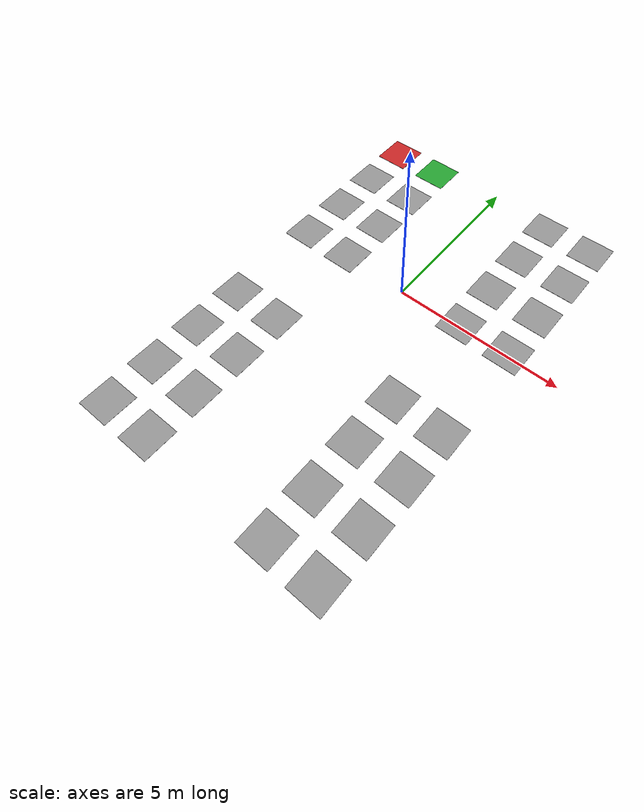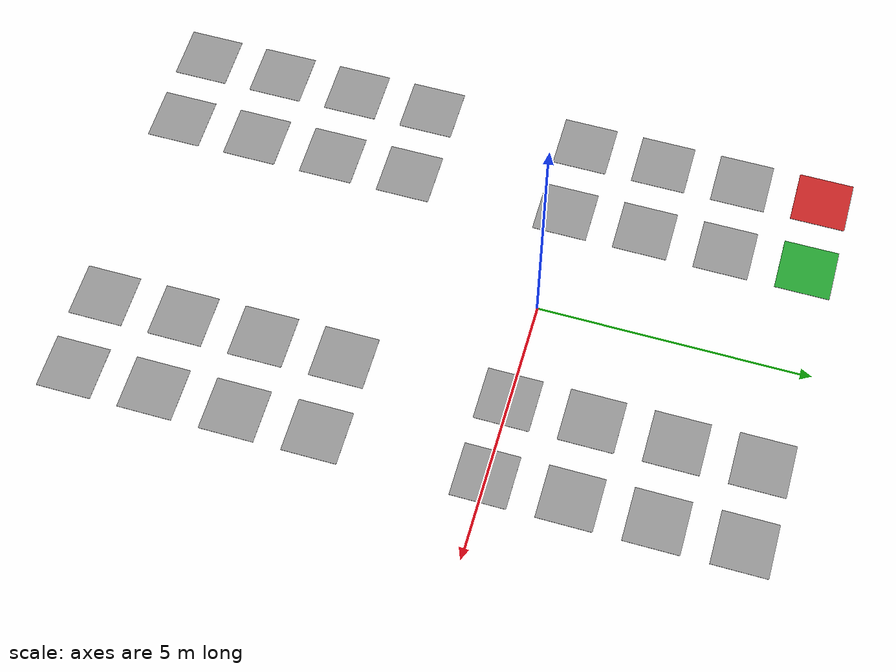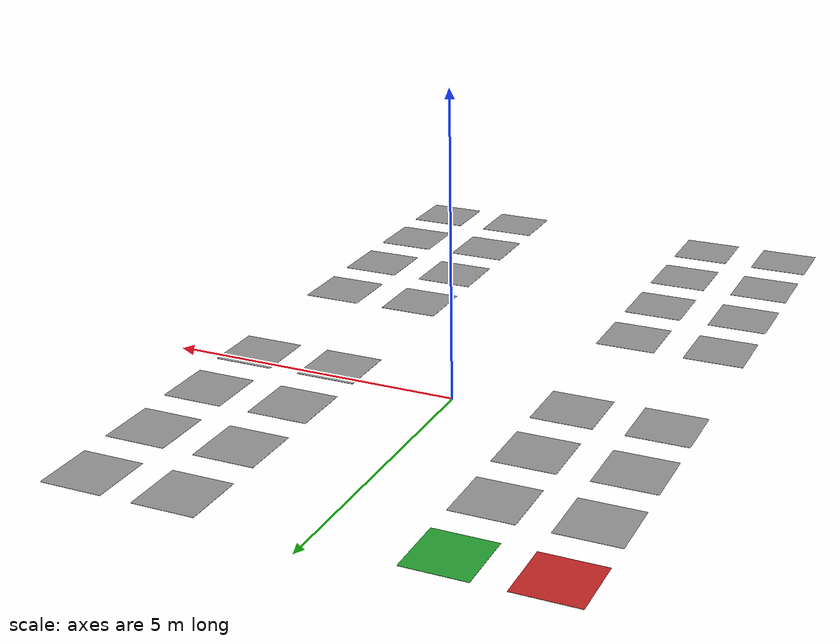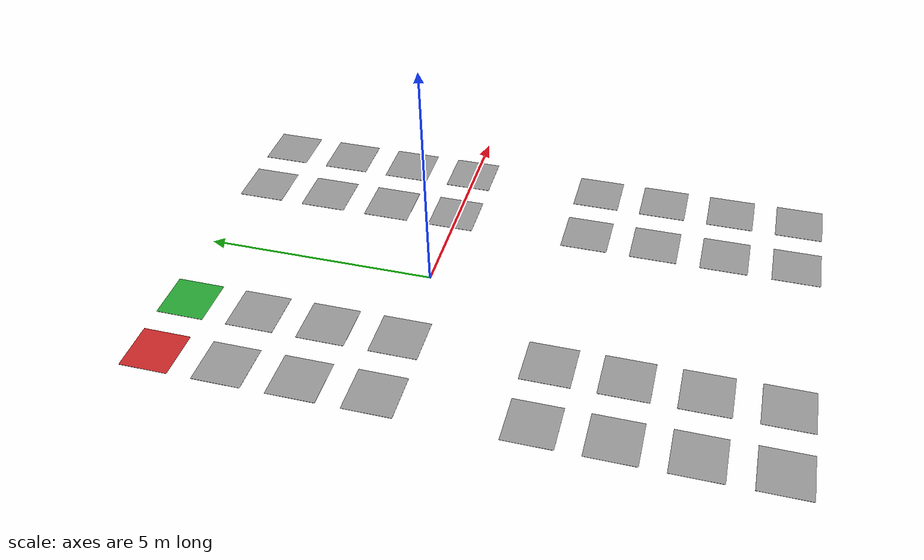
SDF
<sdf version="1.6">
 <world name="default">
  <gravity>0 0 -9.8</gravity>
  <physics default="0" name="default_physics" type="ode">
   <max_step_size>0.001</max_step_size>
   <real_time_factor>1</real_time_factor>
   <real_time_update_rate>1000</real_time_update_rate>
  </physics>
  <model name="grid1_1">
   <pose>3.5 -7.5 0.2 0 0 0</pose>
   <link name="link">
    <collision name="collision"><geometry><box><size>1.5 1.5 0.005</size></box></geometry></collision>
    <visual name="visual">
     <geometry><box><size>1 1 0.005</size></box></geometry>
     <material>
      <script><name>Gazebo/Grey</name><uri>file://media/materials/scripts/gazebo.material</uri></script>
     </material>
    </visual>
   </link>
   <static>1</static>
  </model>
  <model name="grid1_2">
   <pose>2 -7.5 0.2 0 0 0</pose>
   <link name="link">
    <collision name="collision"><geometry><box><size>1.5 1.5 0.005</size></box></geometry></collision>
    <visual name="visual">
     <geometry><box><size>1 1 0.005</size></box></geometry>
     <material>
      <script><name>Gazebo/Grey</name><uri>file://media/materials/scripts/gazebo.material</uri></script>
     </material>
    </visual>
   </link>
   <static>1</static>
  </model>
  <model name="grid1_3">
   <pose>3.5 -6 0.2 0 0 0</pose>
   <link name="link">
    <collision name="collision"><geometry><box><size>1.5 1.5 0.005</size></box></geometry></collision>
    <visual name="visual">
     <geometry><box><size>1 1 0.005</size></box></geometry>
     <material>
      <script><name>Gazebo/Grey</name><uri>file://media/materials/scripts/gazebo.material</uri></script>
     </material>
    </visual>
   </link>
   <static>1</static>
  </model>
  <model name="grid1_4">
   <pose>2 -6 0.2 0 0 0</pose>
   <link name="link">
    <collision name="collision"><geometry><box><size>1.5 1.5 0.005</size></box></geometry></collision>
    <visual name="visual">
     <geometry><box><size>1 1 0.005</size></box></geometry>
     <material>
      <script><name>Gazebo/Grey</name><uri>file://media/materials/scripts/gazebo.material</uri></script>
     </material>
    </visual>
   </link>
   <static>1</static>
  </model>
  <model name="grid1_5">
   <pose>3.5 -4.5 0.2 0 0 0</pose>
   <link name="link">
    <collision name="collision"><geometry><box><size>1.5 1.5 0.005</size></box></geometry></collision>
    <visual name="visual">
     <geometry><box><size>1 1 0.005</size></box></geometry>
     <material>
      <script><name>Gazebo/Grey</name><uri>file://media/materials/scripts/gazebo.material</uri></script>
     </material>
    </visual>
   </link>
   <static>1</static>
  </model>
  <model name="grid1_6">
   <pose>2 -4.5 0.2 0 0 0</pose>
   <link name="link">
    <collision name="collision"><geometry><box><size>1.5 1.5 0.005</size></box></geometry></collision>
    <visual name="visual">
     <geometry><box><size>1 1 0.005</size></box></geometry>
     <material>
      <script><name>Gazebo/Grey</name><uri>file://media/materials/scripts/gazebo.material</uri></script>
     </material>
    </visual>
   </link>
   <static>1</static>
  </model>
  <model name="grid1_7">
   <pose>3.5 -3 0.2 0 0 0</pose>
   <link name="link">
    <collision name="collision"><geometry><box><size>1.5 1.5 0.005</size></box></geometry></collision>
    <visual name="visual">
     <geometry><box><size>1 1 0.005</size></box></geometry>
     <material>
      <script><name>Gazebo/Grey</name><uri>file://media/materials/scripts/gazebo.material</uri></script>
     </material>
    </visual>
   </link>
   <static>1</static>
  </model>
  <model name="grid1_8">
   <pose>2 -3 0.2 0 0 0</pose>
   <link name="link">
    <collision name="collision"><geometry><box><size>1.5 1.5 0.005</size></box></geometry></collision>
    <visual name="visual">
     <geometry><box><size>1 1 0.005</size></box></geometry>
     <material>
      <script><name>Gazebo/Grey</name><uri>file://media/materials/scripts/gazebo.material</uri></script>
     </material>
    </visual>
   </link>
   <static>1</static>
  </model>
  <model name="grid2_1">
   <pose>-2 -7.5 0.2 0 0 0</pose>
   <link name="link">
    <collision name="collision"><geometry><box><size>1.5 1.5 0.005</size></box></geometry></collision>
    <visual name="visual">
     <geometry><box><size>1 1 0.005</size></box></geometry>
     <material>
      <script><name>Gazebo/Grey</name><uri>file://media/materials/scripts/gazebo.material</uri></script>
     </material>
    </visual>
   </link>
   <static>1</static>
  </model>
  <model name="grid2_2">
   <pose>-3.5 -7.5 0.2 0 0 0</pose>
   <link name="link">
    <collision name="collision"><geometry><box><size>1.5 1.5 0.005</size></box></geometry></collision>
    <visual name="visual">
     <geometry><box><size>1 1 0.005</size></box></geometry>
     <material>
      <script><name>Gazebo/Grey</name><uri>file://media/materials/scripts/gazebo.material</uri></script>
     </material>
    </visual>
   </link>
   <static>1</static>
  </model>
  <model name="grid2_3">
   <pose>-2 -6 0.2 0 0 0</pose>
   <link name="link">
    <collision name="collision"><geometry><box><size>1.5 1.5 0.005</size></box></geometry></collision>
    <visual name="visual">
     <geometry><box><size>1 1 0.005</size></box></geometry>
     <material>
      <script><name>Gazebo/Grey</name><uri>file://media/materials/scripts/gazebo.material</uri></script>
     </material>
    </visual>
   </link>
   <static>1</static>
  </model>
  <model name="grid2_4">
   <pose>-3.5 -6 0.2 0 0 0</pose>
   <link name="link">
    <collision name="collision"><geometry><box><size>1.5 1.5 0.005</size></box></geometry></collision>
    <visual name="visual">
     <geometry><box><size>1 1 0.005</size></box></geometry>
     <material>
      <script><name>Gazebo/Grey</name><uri>file://media/materials/scripts/gazebo.material</uri></script>
     </material>
    </visual>
   </link>
   <static>1</static>
  </model>
  <model name="grid2_5">
   <pose>-2 -4.5 0.2 0 0 0</pose>
   <link name="link">
    <collision name="collision"><geometry><box><size>1.5 1.5 0.005</size></box></geometry></collision>
    <visual name="visual">
     <geometry><box><size>1 1 0.005</size></box></geometry>
     <material>
      <script><name>Gazebo/Grey</name><uri>file://media/materials/scripts/gazebo.material</uri></script>
     </material>
    </visual>
   </link>
   <static>1</static>
  </model>
  <model name="grid2_6">
   <pose>-3.5 -4.5 0.2 0 0 0</pose>
   <link name="link">
    <collision name="collision"><geometry><box><size>1.5 1.5 0.005</size></box></geometry></collision>
    <visual name="visual">
     <geometry><box><size>1 1 0.005</size></box></geometry>
     <material>
      <script><name>Gazebo/Grey</name><uri>file://media/materials/scripts/gazebo.material</uri></script>
     </material>
    </visual>
   </link>
   <static>1</static>
  </model>
  <model name="grid2_7">
   <pose>-2 -3 0.2 0 0 0</pose>
   <link name="link">
    <collision name="collision"><geometry><box><size>1.5 1.5 0.005</size></box></geometry></collision>
    <visual name="visual">
     <geometry><box><size>1 1 0.005</size></box></geometry>
     <material>
      <script><name>Gazebo/Grey</name><uri>file://media/materials/scripts/gazebo.material</uri></script>
     </material>
    </visual>
   </link>
   <static>1</static>
  </model>
  <model name="grid2_8">
   <pose>-3.5 -3 0.2 0 0 0</pose>
   <link name="link">
    <collision name="collision"><geometry><box><size>1.5 1.5 0.005</size></box></geometry></collision>
    <visual name="visual">
     <geometry><box><size>1 1 0.005</size></box></geometry>
     <material>
      <script><name>Gazebo/Grey</name><uri>file://media/materials/scripts/gazebo.material</uri></script>
     </material>
    </visual>
   </link>
   <static>1</static>
  </model>
  <model name="grid3_1">
   <pose>3.5 0 0.2 0 0 0</pose>
   <link name="link">
    <collision name="collision"><geometry><box><size>1.5 1.5 0.005</size></box></geometry></collision>
    <visual name="visual">
     <geometry><box><size>1 1 0.005</size></box></geometry>
     <material>
      <script><name>Gazebo/Grey</name><uri>file://media/materials/scripts/gazebo.material</uri></script>
     </material>
    </visual>
   </link>
   <static>1</static>
  </model>
  <model name="grid3_2">
   <pose>2 0 0.2 0 0 0</pose>
   <link name="link">
    <collision name="collision"><geometry><box><size>1.5 1.5 0.005</size></box></geometry></collision>
    <visual name="visual">
     <geometry><box><size>1 1 0.005</size></box></geometry>
     <material>
      <script><name>Gazebo/Grey</name><uri>file://media/materials/scripts/gazebo.material</uri></script>
     </material>
    </visual>
   </link>
   <static>1</static>
  </model>
  <model name="grid3_3">
   <pose>3.5 1.5 0.2 0 0 0</pose>
   <link name="link">
    <collision name="collision"><geometry><box><size>1.5 1.5 0.005</size></box></geometry></collision>
    <visual name="visual">
     <geometry><box><size>1 1 0.005</size></box></geometry>
     <material>
      <script><name>Gazebo/Grey</name><uri>file://media/materials/scripts/gazebo.material</uri></script>
     </material>
    </visual>
   </link>
   <static>1</static>
  </model>
  <model name="grid3_4">
   <pose>2 1.5 0.2 0 0 0</pose>
   <link name="link">
    <collision name="collision"><geometry><box><size>1.5 1.5 0.005</size></box></geometry></collision>
    <visual name="visual">
     <geometry><box><size>1 1 0.005</size></box></geometry>
     <material>
      <script><name>Gazebo/Grey</name><uri>file://media/materials/scripts/gazebo.material</uri></script>
     </material>
    </visual>
   </link>
   <static>1</static>
  </model>
  <model name="grid3_5">
   <pose>3.5 3 0.2 0 0 0</pose>
   <link name="link">
    <collision name="collision"><geometry><box><size>1.5 1.5 0.005</size></box></geometry></collision>
    <visual name="visual">
     <geometry><box><size>1 1 0.005</size></box></geometry>
     <material>
      <script><name>Gazebo/Grey</name><uri>file://media/materials/scripts/gazebo.material</uri></script>
     </material>
    </visual>
   </link>
   <static>1</static>
  </model>
  <model name="grid3_6">
   <pose>2 3 0.2 0 0 0</pose>
   <link name="link">
    <collision name="collision"><geometry><box><size>1.5 1.5 0.005</size></box></geometry></collision>
    <visual name="visual">
     <geometry><box><size>1 1 0.005</size></box></geometry>
     <material>
      <script><name>Gazebo/Grey</name><uri>file://media/materials/scripts/gazebo.material</uri></script>
     </material>
    </visual>
   </link>
   <static>1</static>
  </model>
  <model name="grid3_7">
   <pose>3.5 4.5 0.2 0 0 0</pose>
   <link name="link">
    <collision name="collision"><geometry><box><size>1.5 1.5 0.005</size></box></geometry></collision>
    <visual name="visual">
     <geometry><box><size>1 1 0.005</size></box></geometry>
     <material>
      <script><name>Gazebo/Grey</name><uri>file://media/materials/scripts/gazebo.material</uri></script>
     </material>
    </visual>
   </link>
   <static>1</static>
  </model>
  <model name="grid3_8">
   <pose>2 4.5 0.2 0 0 0</pose>
   <link name="link">
    <collision name="collision"><geometry><box><size>1.5 1.5 0.005</size></box></geometry></collision>
    <visual name="visual">
     <geometry><box><size>1 1 0.005</size></box></geometry>
     <material>
      <script><name>Gazebo/Grey</name><uri>file://media/materials/scripts/gazebo.material</uri></script>
     </material>
    </visual>
   </link>
   <static>1</static>
  </model>
  <model name="grid4_1">
   <pose>-2 0 0.2 0 0 0</pose>
   <link name="link">
    <collision name="collision"><geometry><box><size>1.5 1.5 0.005</size></box></geometry></collision>
    <visual name="visual">
     <geometry><box><size>1 1 0.005</size></box></geometry>
     <material>
      <script><name>Gazebo/Grey</name><uri>file://media/materials/scripts/gazebo.material</uri></script>
     </material>
    </visual>
   </link>
   <static>1</static>
  </model>
  <model name="grid4_2">
   <pose>-3.5 0 0.2 0 0 0</pose>
   <link name="link">
    <collision name="collision"><geometry><box><size>1.5 1.5 0.005</size></box></geometry></collision>
    <visual name="visual">
     <geometry><box><size>1 1 0.005</size></box></geometry>
     <material>
      <script><name>Gazebo/Grey</name><uri>file://media/materials/scripts/gazebo.material</uri></script>
     </material>
    </visual>
   </link>
   <static>1</static>
  </model>
  <model name="grid4_3">
   <pose>-2 1.5 0.2 0 0 0</pose>
   <link name="link">
    <collision name="collision"><geometry><box><size>1.5 1.5 0.005</size></box></geometry></collision>
    <visual name="visual">
     <geometry><box><size>1 1 0.005</size></box></geometry>
     <material>
      <script><name>Gazebo/Grey</name><uri>file://media/materials/scripts/gazebo.material</uri></script>
     </material>
    </visual>
   </link>
   <static>1</static>
  </model>
  <model name="grid4_4">
   <pose>-3.5 1.5 0.2 0 0 0</pose>
   <link name="link">
    <collision name="collision"><geometry><box><size>1.5 1.5 0.005</size></box></geometry></collision>
    <visual name="visual">
     <geometry><box><size>1 1 0.005</size></box></geometry>
     <material>
      <script><name>Gazebo/Grey</name><uri>file://media/materials/scripts/gazebo.material</uri></script>
     </material>
    </visual>
   </link>
   <static>1</static>
  </model>
  <model name="grid4_5">
   <pose>-2 3 0.2 0 0 0</pose>
   <link name="link">
    <collision name="collision"><geometry><box><size>1.5 1.5 0.005</size></box></geometry></collision>
    <visual name="visual">
     <geometry><box><size>1 1 0.005</size></box></geometry>
     <material>
      <script><name>Gazebo/Grey</name><uri>file://media/materials/scripts/gazebo.material</uri></script>
     </material>
    </visual>
   </link>
   <static>1</static>
  </model>
  <model name="grid4_6">
   <pose>-3.5 3 0.2 0 0 0</pose>
   <link name="link">
    <collision name="collision"><geometry><box><size>1.5 1.5 0.005</size></box></geometry></collision>
    <visual name="visual">
     <geometry><box><size>1 1 0.005</size></box></geometry>
     <material>
      <script><name>Gazebo/Grey</name><uri>file://media/materials/scripts/gazebo.material</uri></script>
     </material>
    </visual>
   </link>
   <static>1</static>
  </model>
  <model name="grid4_7">
   <pose>-2 4.5 0.2 0 0 0</pose>
   <link name="link">
    <collision name="collision"><geometry><box><size>1.5 1.5 0.005</size></box></geometry></collision>
    <visual name="visual">
     <geometry><box><size>1 1 0.005</size></box></geometry>
     <material>
      <script><name>Gazebo/Green</name><uri>file://media/materials/scripts/gazebo.material</uri></script>
     </material>
    </visual>
   </link>
   <static>1</static>
  </model>
  <model name="grid4_8">
   <pose>-3.5 4.5 0.2 0 0 0</pose>
   <link name="link">
    <collision name="collision"><geometry><box><size>1.5 1.5 0.005</size></box></geometry></collision>
    <visual name="visual">
     <geometry><box><size>1 1 0.005</size></box></geometry>
     <material>
      <script><name>Gazebo/Red</name><uri>file://media/materials/scripts/gazebo.material</uri></script>
     </material>
    </visual>
   </link>
   <static>1</static>
  </model>
  <light name="Warehouse_CeilingLight_003" type="point">
   <pose>0 0 9 0 0 0</pose>
   <diffuse>0.5 0.5 0.5 1</diffuse>
   <specular>0.2 0.2 0.2 1</specular>
   <attenuation>
    <range>80</range>
    <constant>0.3</constant>
    <linear>0.01</linear>
    <quadratic>0.001</quadratic>
   </attenuation>
   <direction>0.1 0.1 -1</direction>
  </light>
 </world>
</sdf>
